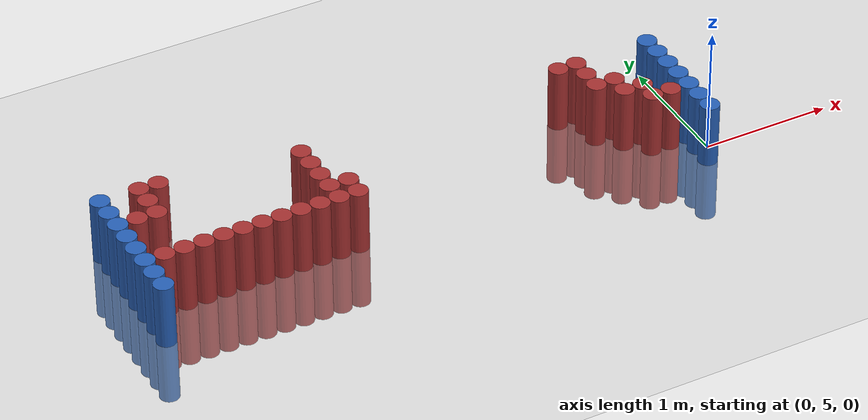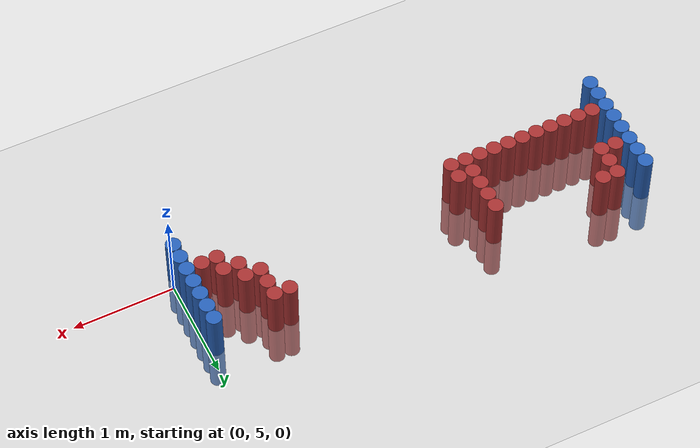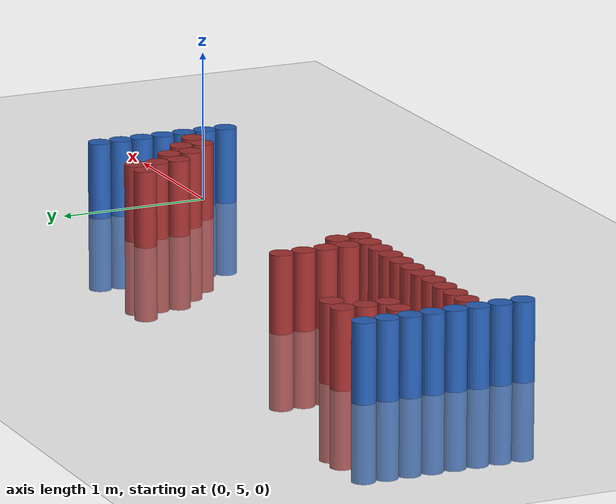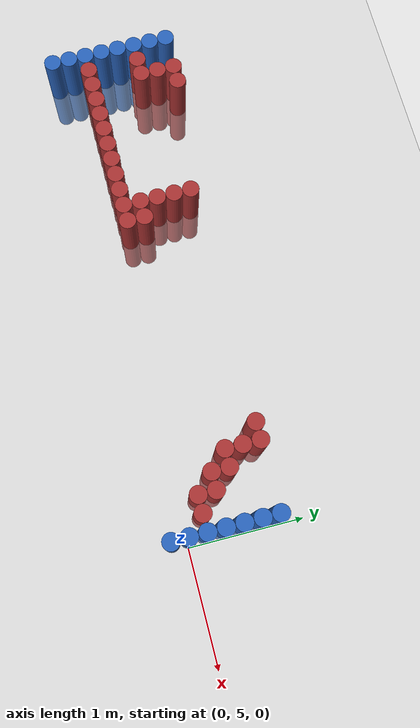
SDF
<sdf version="1.6">
 <world name="default">
  <model name="ground_plane">
   <static>1</static>
   <link name="link">
    <collision name="collision">
     <geometry><plane><normal>0 0 1</normal><size>100 100</size></plane></geometry>
     <surface><friction><ode><mu>100</mu><mu2>50</mu2></ode></friction></surface>
    </collision>
    <visual name="visual">
     <cast_shadows>0</cast_shadows>
     <geometry><plane><normal>0 0 1</normal><size>100 100</size></plane></geometry>
     <material>
      <script><uri>file://media/materials/scripts/gazebo.material</uri><name>Gazebo/Grey</name></script>
     </material>
    </visual>
   </link>
  </model>
  <model name="unit_cylinder_92">
   <static>1</static>
   <pose>-0.075000 4.875000 0.000000 0.000000 0.000000 0.000000</pose>
   <link name="link">
    <inertial>
     <mass>1</mass>
     <inertia><ixx>0.145833</ixx><ixy>0</ixy><ixz>0</ixz><iyy>0.145833</iyy><iyz>0</iyz><izz>0.125</izz></inertia>
    </inertial>
    <collision name="collision">
     <geometry><cylinder><radius>0.075000</radius><length>1</length></cylinder></geometry>
    </collision>
    <visual name="visual">
     <geometry><cylinder><radius>0.075000</radius><length>1</length></cylinder></geometry>
     <material>
      <ambient>0.152000 0.379000 0.720000 1</ambient>
      <diffuse>0.152000 0.379000 0.720000 1</diffuse>
     </material>
     <material>
      <script><name>Gazebo/Grey</name><uri>file://media/materials/scripts/gazebo.material</uri></script>
     </material>
    </visual>
   </link>
  </model>
  <model name="unit_cylinder_93">
   <static>1</static>
   <pose>-4.425000 4.875000 0.000000 0.000000 0.000000 0.000000</pose>
   <link name="link">
    <inertial>
     <mass>1</mass>
     <inertia><ixx>0.145833</ixx><ixy>0</ixy><ixz>0</ixz><iyy>0.145833</iyy><iyz>0</iyz><izz>0.125</izz></inertia>
    </inertial>
    <collision name="collision">
     <geometry><cylinder><radius>0.075000</radius><length>1</length></cylinder></geometry>
    </collision>
    <visual name="visual">
     <geometry><cylinder><radius>0.075000</radius><length>1</length></cylinder></geometry>
     <material>
      <ambient>0.152000 0.379000 0.720000 1</ambient>
      <diffuse>0.152000 0.379000 0.720000 1</diffuse>
     </material>
     <material>
      <script><name>Gazebo/Grey</name><uri>file://media/materials/scripts/gazebo.material</uri></script>
     </material>
    </visual>
   </link>
  </model>
  <model name="unit_cylinder_94">
   <static>1</static>
   <pose>-0.075000 5.025000 0.000000 0.000000 0.000000 0.000000</pose>
   <link name="link">
    <inertial>
     <mass>1</mass>
     <inertia><ixx>0.145833</ixx><ixy>0</ixy><ixz>0</ixz><iyy>0.145833</iyy><iyz>0</iyz><izz>0.125</izz></inertia>
    </inertial>
    <collision name="collision">
     <geometry><cylinder><radius>0.075000</radius><length>1</length></cylinder></geometry>
    </collision>
    <visual name="visual">
     <geometry><cylinder><radius>0.075000</radius><length>1</length></cylinder></geometry>
     <material>
      <ambient>0.152000 0.379000 0.720000 1</ambient>
      <diffuse>0.152000 0.379000 0.720000 1</diffuse>
     </material>
     <material>
      <script><name>Gazebo/Grey</name><uri>file://media/materials/scripts/gazebo.material</uri></script>
     </material>
    </visual>
   </link>
  </model>
  <model name="unit_cylinder_95">
   <static>1</static>
   <pose>-4.425000 5.025000 0.000000 0.000000 0.000000 0.000000</pose>
   <link name="link">
    <inertial>
     <mass>1</mass>
     <inertia><ixx>0.145833</ixx><ixy>0</ixy><ixz>0</ixz><iyy>0.145833</iyy><iyz>0</iyz><izz>0.125</izz></inertia>
    </inertial>
    <collision name="collision">
     <geometry><cylinder><radius>0.075000</radius><length>1</length></cylinder></geometry>
    </collision>
    <visual name="visual">
     <geometry><cylinder><radius>0.075000</radius><length>1</length></cylinder></geometry>
     <material>
      <ambient>0.152000 0.379000 0.720000 1</ambient>
      <diffuse>0.152000 0.379000 0.720000 1</diffuse>
     </material>
     <material>
      <script><name>Gazebo/Grey</name><uri>file://media/materials/scripts/gazebo.material</uri></script>
     </material>
    </visual>
   </link>
  </model>
  <model name="unit_cylinder_96">
   <static>1</static>
   <pose>-4.425000 5.175000 0.000000 0.000000 0.000000 0.000000</pose>
   <link name="link">
    <inertial>
     <mass>1</mass>
     <inertia><ixx>0.145833</ixx><ixy>0</ixy><ixz>0</ixz><iyy>0.145833</iyy><iyz>0</iyz><izz>0.125</izz></inertia>
    </inertial>
    <collision name="collision">
     <geometry><cylinder><radius>0.075000</radius><length>1</length></cylinder></geometry>
    </collision>
    <visual name="visual">
     <geometry><cylinder><radius>0.075000</radius><length>1</length></cylinder></geometry>
     <material>
      <ambient>0.152000 0.379000 0.720000 1</ambient>
      <diffuse>0.152000 0.379000 0.720000 1</diffuse>
     </material>
     <material>
      <script><name>Gazebo/Grey</name><uri>file://media/materials/scripts/gazebo.material</uri></script>
     </material>
    </visual>
   </link>
  </model>
  <model name="unit_cylinder_97">
   <static>1</static>
   <pose>-4.425000 5.325000 0.000000 0.000000 0.000000 0.000000</pose>
   <link name="link">
    <inertial>
     <mass>1</mass>
     <inertia><ixx>0.145833</ixx><ixy>0</ixy><ixz>0</ixz><iyy>0.145833</iyy><iyz>0</iyz><izz>0.125</izz></inertia>
    </inertial>
    <collision name="collision">
     <geometry><cylinder><radius>0.075000</radius><length>1</length></cylinder></geometry>
    </collision>
    <visual name="visual">
     <geometry><cylinder><radius>0.075000</radius><length>1</length></cylinder></geometry>
     <material>
      <ambient>0.152000 0.379000 0.720000 1</ambient>
      <diffuse>0.152000 0.379000 0.720000 1</diffuse>
     </material>
     <material>
      <script><name>Gazebo/Grey</name><uri>file://media/materials/scripts/gazebo.material</uri></script>
     </material>
    </visual>
   </link>
  </model>
  <model name="unit_cylinder_98">
   <static>1</static>
   <pose>-4.425000 5.475000 0.000000 0.000000 0.000000 0.000000</pose>
   <link name="link">
    <inertial>
     <mass>1</mass>
     <inertia><ixx>0.145833</ixx><ixy>0</ixy><ixz>0</ixz><iyy>0.145833</iyy><iyz>0</iyz><izz>0.125</izz></inertia>
    </inertial>
    <collision name="collision">
     <geometry><cylinder><radius>0.075000</radius><length>1</length></cylinder></geometry>
    </collision>
    <visual name="visual">
     <geometry><cylinder><radius>0.075000</radius><length>1</length></cylinder></geometry>
     <material>
      <ambient>0.152000 0.379000 0.720000 1</ambient>
      <diffuse>0.152000 0.379000 0.720000 1</diffuse>
     </material>
     <material>
      <script><name>Gazebo/Grey</name><uri>file://media/materials/scripts/gazebo.material</uri></script>
     </material>
    </visual>
   </link>
  </model>
  <model name="unit_cylinder_99">
   <static>1</static>
   <pose>-4.425000 5.625000 0.000000 0.000000 0.000000 0.000000</pose>
   <link name="link">
    <inertial>
     <mass>1</mass>
     <inertia><ixx>0.145833</ixx><ixy>0</ixy><ixz>0</ixz><iyy>0.145833</iyy><iyz>0</iyz><izz>0.125</izz></inertia>
    </inertial>
    <collision name="collision">
     <geometry><cylinder><radius>0.075000</radius><length>1</length></cylinder></geometry>
    </collision>
    <visual name="visual">
     <geometry><cylinder><radius>0.075000</radius><length>1</length></cylinder></geometry>
     <material>
      <ambient>0.152000 0.379000 0.720000 1</ambient>
      <diffuse>0.152000 0.379000 0.720000 1</diffuse>
     </material>
     <material>
      <script><name>Gazebo/Grey</name><uri>file://media/materials/scripts/gazebo.material</uri></script>
     </material>
    </visual>
   </link>
  </model>
  <model name="unit_cylinder_100">
   <static>1</static>
   <pose>-4.425000 5.775000 0.000000 0.000000 0.000000 0.000000</pose>
   <link name="link">
    <inertial>
     <mass>1</mass>
     <inertia><ixx>0.145833</ixx><ixy>0</ixy><ixz>0</ixz><iyy>0.145833</iyy><iyz>0</iyz><izz>0.125</izz></inertia>
    </inertial>
    <collision name="collision">
     <geometry><cylinder><radius>0.075000</radius><length>1</length></cylinder></geometry>
    </collision>
    <visual name="visual">
     <geometry><cylinder><radius>0.075000</radius><length>1</length></cylinder></geometry>
     <material>
      <ambient>0.152000 0.379000 0.720000 1</ambient>
      <diffuse>0.152000 0.379000 0.720000 1</diffuse>
     </material>
     <material>
      <script><name>Gazebo/Grey</name><uri>file://media/materials/scripts/gazebo.material</uri></script>
     </material>
    </visual>
   </link>
  </model>
  <model name="unit_cylinder_101">
   <static>1</static>
   <pose>-4.425000 5.925000 0.000000 0.000000 0.000000 0.000000</pose>
   <link name="link">
    <inertial>
     <mass>1</mass>
     <inertia><ixx>0.145833</ixx><ixy>0</ixy><ixz>0</ixz><iyy>0.145833</iyy><iyz>0</iyz><izz>0.125</izz></inertia>
    </inertial>
    <collision name="collision">
     <geometry><cylinder><radius>0.075000</radius><length>1</length></cylinder></geometry>
    </collision>
    <visual name="visual">
     <geometry><cylinder><radius>0.075000</radius><length>1</length></cylinder></geometry>
     <material>
      <ambient>0.152000 0.379000 0.720000 1</ambient>
      <diffuse>0.152000 0.379000 0.720000 1</diffuse>
     </material>
     <material>
      <script><name>Gazebo/Grey</name><uri>file://media/materials/scripts/gazebo.material</uri></script>
     </material>
    </visual>
   </link>
  </model>
  <model name="unit_cylinder_126">
   <static>1</static>
   <pose>-4.275000 5.175000 0.000000 0.000000 0.000000 0.000000</pose>
   <link name="link">
    <inertial>
     <mass>1</mass>
     <inertia><ixx>0.145833</ixx><ixy>0</ixy><ixz>0</ixz><iyy>0.145833</iyy><iyz>0</iyz><izz>0.125</izz></inertia>
    </inertial>
    <collision name="collision">
     <geometry><cylinder><radius>0.075000</radius><length>1</length></cylinder></geometry>
    </collision>
    <visual name="visual">
     <geometry><cylinder><radius>0.075000</radius><length>1</length></cylinder></geometry>
     <material>
      <ambient>0.648000 0.192000 0.192000 1</ambient>
      <diffuse>0.648000 0.192000 0.192000 1</diffuse>
     </material>
     <material>
      <script><name>Gazebo/Grey</name><uri>file://media/materials/scripts/gazebo.material</uri></script>
     </material>
    </visual>
   </link>
  </model>
  <model name="unit_cylinder_127">
   <static>1</static>
   <pose>-4.275000 5.625000 0.000000 0.000000 0.000000 0.000000</pose>
   <link name="link">
    <inertial>
     <mass>1</mass>
     <inertia><ixx>0.145833</ixx><ixy>0</ixy><ixz>0</ixz><iyy>0.145833</iyy><iyz>0</iyz><izz>0.125</izz></inertia>
    </inertial>
    <collision name="collision">
     <geometry><cylinder><radius>0.075000</radius><length>1</length></cylinder></geometry>
    </collision>
    <visual name="visual">
     <geometry><cylinder><radius>0.075000</radius><length>1</length></cylinder></geometry>
     <material>
      <ambient>0.648000 0.192000 0.192000 1</ambient>
      <diffuse>0.648000 0.192000 0.192000 1</diffuse>
     </material>
     <material>
      <script><name>Gazebo/Grey</name><uri>file://media/materials/scripts/gazebo.material</uri></script>
     </material>
    </visual>
   </link>
  </model>
  <model name="unit_cylinder_128">
   <static>1</static>
   <pose>-4.125000 5.175000 0.000000 0.000000 0.000000 0.000000</pose>
   <link name="link">
    <inertial>
     <mass>1</mass>
     <inertia><ixx>0.145833</ixx><ixy>0</ixy><ixz>0</ixz><iyy>0.145833</iyy><iyz>0</iyz><izz>0.125</izz></inertia>
    </inertial>
    <collision name="collision">
     <geometry><cylinder><radius>0.075000</radius><length>1</length></cylinder></geometry>
    </collision>
    <visual name="visual">
     <geometry><cylinder><radius>0.075000</radius><length>1</length></cylinder></geometry>
     <material>
      <ambient>0.648000 0.192000 0.192000 1</ambient>
      <diffuse>0.648000 0.192000 0.192000 1</diffuse>
     </material>
     <material>
      <script><name>Gazebo/Grey</name><uri>file://media/materials/scripts/gazebo.material</uri></script>
     </material>
    </visual>
   </link>
  </model>
  <model name="unit_cylinder_129">
   <static>1</static>
   <pose>-4.125000 5.625000 0.000000 0.000000 0.000000 0.000000</pose>
   <link name="link">
    <inertial>
     <mass>1</mass>
     <inertia><ixx>0.145833</ixx><ixy>0</ixy><ixz>0</ixz><iyy>0.145833</iyy><iyz>0</iyz><izz>0.125</izz></inertia>
    </inertial>
    <collision name="collision">
     <geometry><cylinder><radius>0.075000</radius><length>1</length></cylinder></geometry>
    </collision>
    <visual name="visual">
     <geometry><cylinder><radius>0.075000</radius><length>1</length></cylinder></geometry>
     <material>
      <ambient>0.648000 0.192000 0.192000 1</ambient>
      <diffuse>0.648000 0.192000 0.192000 1</diffuse>
     </material>
     <material>
      <script><name>Gazebo/Grey</name><uri>file://media/materials/scripts/gazebo.material</uri></script>
     </material>
    </visual>
   </link>
  </model>
  <model name="unit_cylinder_130">
   <static>1</static>
   <pose>-4.125000 5.775000 0.000000 0.000000 0.000000 0.000000</pose>
   <link name="link">
    <inertial>
     <mass>1</mass>
     <inertia><ixx>0.145833</ixx><ixy>0</ixy><ixz>0</ixz><iyy>0.145833</iyy><iyz>0</iyz><izz>0.125</izz></inertia>
    </inertial>
    <collision name="collision">
     <geometry><cylinder><radius>0.075000</radius><length>1</length></cylinder></geometry>
    </collision>
    <visual name="visual">
     <geometry><cylinder><radius>0.075000</radius><length>1</length></cylinder></geometry>
     <material>
      <ambient>0.648000 0.192000 0.192000 1</ambient>
      <diffuse>0.648000 0.192000 0.192000 1</diffuse>
     </material>
     <material>
      <script><name>Gazebo/Grey</name><uri>file://media/materials/scripts/gazebo.material</uri></script>
     </material>
    </visual>
   </link>
  </model>
  <model name="unit_cylinder_131">
   <static>1</static>
   <pose>-4.125000 5.925000 0.000000 0.000000 0.000000 0.000000</pose>
   <link name="link">
    <inertial>
     <mass>1</mass>
     <inertia><ixx>0.145833</ixx><ixy>0</ixy><ixz>0</ixz><iyy>0.145833</iyy><iyz>0</iyz><izz>0.125</izz></inertia>
    </inertial>
    <collision name="collision">
     <geometry><cylinder><radius>0.075000</radius><length>1</length></cylinder></geometry>
    </collision>
    <visual name="visual">
     <geometry><cylinder><radius>0.075000</radius><length>1</length></cylinder></geometry>
     <material>
      <ambient>0.648000 0.192000 0.192000 1</ambient>
      <diffuse>0.648000 0.192000 0.192000 1</diffuse>
     </material>
     <material>
      <script><name>Gazebo/Grey</name><uri>file://media/materials/scripts/gazebo.material</uri></script>
     </material>
    </visual>
   </link>
  </model>
  <model name="unit_cylinder_132">
   <static>1</static>
   <pose>-3.975000 5.175000 0.000000 0.000000 0.000000 0.000000</pose>
   <link name="link">
    <inertial>
     <mass>1</mass>
     <inertia><ixx>0.145833</ixx><ixy>0</ixy><ixz>0</ixz><iyy>0.145833</iyy><iyz>0</iyz><izz>0.125</izz></inertia>
    </inertial>
    <collision name="collision">
     <geometry><cylinder><radius>0.075000</radius><length>1</length></cylinder></geometry>
    </collision>
    <visual name="visual">
     <geometry><cylinder><radius>0.075000</radius><length>1</length></cylinder></geometry>
     <material>
      <ambient>0.648000 0.192000 0.192000 1</ambient>
      <diffuse>0.648000 0.192000 0.192000 1</diffuse>
     </material>
     <material>
      <script><name>Gazebo/Grey</name><uri>file://media/materials/scripts/gazebo.material</uri></script>
     </material>
    </visual>
   </link>
  </model>
  <model name="unit_cylinder_133">
   <static>1</static>
   <pose>-3.975000 5.925000 0.000000 0.000000 0.000000 0.000000</pose>
   <link name="link">
    <inertial>
     <mass>1</mass>
     <inertia><ixx>0.145833</ixx><ixy>0</ixy><ixz>0</ixz><iyy>0.145833</iyy><iyz>0</iyz><izz>0.125</izz></inertia>
    </inertial>
    <collision name="collision">
     <geometry><cylinder><radius>0.075000</radius><length>1</length></cylinder></geometry>
    </collision>
    <visual name="visual">
     <geometry><cylinder><radius>0.075000</radius><length>1</length></cylinder></geometry>
     <material>
      <ambient>0.648000 0.192000 0.192000 1</ambient>
      <diffuse>0.648000 0.192000 0.192000 1</diffuse>
     </material>
     <material>
      <script><name>Gazebo/Grey</name><uri>file://media/materials/scripts/gazebo.material</uri></script>
     </material>
    </visual>
   </link>
  </model>
  <model name="unit_cylinder_135">
   <static>1</static>
   <pose>-3.825000 5.175000 0.000000 0.000000 0.000000 0.000000</pose>
   <link name="link">
    <inertial>
     <mass>1</mass>
     <inertia><ixx>0.145833</ixx><ixy>0</ixy><ixz>0</ixz><iyy>0.145833</iyy><iyz>0</iyz><izz>0.125</izz></inertia>
    </inertial>
    <collision name="collision">
     <geometry><cylinder><radius>0.075000</radius><length>1</length></cylinder></geometry>
    </collision>
    <visual name="visual">
     <geometry><cylinder><radius>0.075000</radius><length>1</length></cylinder></geometry>
     <material>
      <ambient>0.648000 0.192000 0.192000 1</ambient>
      <diffuse>0.648000 0.192000 0.192000 1</diffuse>
     </material>
     <material>
      <script><name>Gazebo/Grey</name><uri>file://media/materials/scripts/gazebo.material</uri></script>
     </material>
    </visual>
   </link>
  </model>
  <model name="unit_cylinder_140">
   <static>1</static>
   <pose>-3.675000 5.175000 0.000000 0.000000 0.000000 0.000000</pose>
   <link name="link">
    <inertial>
     <mass>1</mass>
     <inertia><ixx>0.145833</ixx><ixy>0</ixy><ixz>0</ixz><iyy>0.145833</iyy><iyz>0</iyz><izz>0.125</izz></inertia>
    </inertial>
    <collision name="collision">
     <geometry><cylinder><radius>0.075000</radius><length>1</length></cylinder></geometry>
    </collision>
    <visual name="visual">
     <geometry><cylinder><radius>0.075000</radius><length>1</length></cylinder></geometry>
     <material>
      <ambient>0.648000 0.192000 0.192000 1</ambient>
      <diffuse>0.648000 0.192000 0.192000 1</diffuse>
     </material>
     <material>
      <script><name>Gazebo/Grey</name><uri>file://media/materials/scripts/gazebo.material</uri></script>
     </material>
    </visual>
   </link>
  </model>
  <model name="unit_cylinder_144">
   <static>1</static>
   <pose>-3.525000 5.175000 0.000000 0.000000 0.000000 0.000000</pose>
   <link name="link">
    <inertial>
     <mass>1</mass>
     <inertia><ixx>0.145833</ixx><ixy>0</ixy><ixz>0</ixz><iyy>0.145833</iyy><iyz>0</iyz><izz>0.125</izz></inertia>
    </inertial>
    <collision name="collision">
     <geometry><cylinder><radius>0.075000</radius><length>1</length></cylinder></geometry>
    </collision>
    <visual name="visual">
     <geometry><cylinder><radius>0.075000</radius><length>1</length></cylinder></geometry>
     <material>
      <ambient>0.648000 0.192000 0.192000 1</ambient>
      <diffuse>0.648000 0.192000 0.192000 1</diffuse>
     </material>
     <material>
      <script><name>Gazebo/Grey</name><uri>file://media/materials/scripts/gazebo.material</uri></script>
     </material>
    </visual>
   </link>
  </model>
  <model name="unit_cylinder_150">
   <static>1</static>
   <pose>-3.375000 5.175000 0.000000 0.000000 0.000000 0.000000</pose>
   <link name="link">
    <inertial>
     <mass>1</mass>
     <inertia><ixx>0.145833</ixx><ixy>0</ixy><ixz>0</ixz><iyy>0.145833</iyy><iyz>0</iyz><izz>0.125</izz></inertia>
    </inertial>
    <collision name="collision">
     <geometry><cylinder><radius>0.075000</radius><length>1</length></cylinder></geometry>
    </collision>
    <visual name="visual">
     <geometry><cylinder><radius>0.075000</radius><length>1</length></cylinder></geometry>
     <material>
      <ambient>0.648000 0.192000 0.192000 1</ambient>
      <diffuse>0.648000 0.192000 0.192000 1</diffuse>
     </material>
     <material>
      <script><name>Gazebo/Grey</name><uri>file://media/materials/scripts/gazebo.material</uri></script>
     </material>
    </visual>
   </link>
  </model>
  <model name="unit_cylinder_155">
   <static>1</static>
   <pose>-3.225000 5.175000 0.000000 0.000000 0.000000 0.000000</pose>
   <link name="link">
    <inertial>
     <mass>1</mass>
     <inertia><ixx>0.145833</ixx><ixy>0</ixy><ixz>0</ixz><iyy>0.145833</iyy><iyz>0</iyz><izz>0.125</izz></inertia>
    </inertial>
    <collision name="collision">
     <geometry><cylinder><radius>0.075000</radius><length>1</length></cylinder></geometry>
    </collision>
    <visual name="visual">
     <geometry><cylinder><radius>0.075000</radius><length>1</length></cylinder></geometry>
     <material>
      <ambient>0.648000 0.192000 0.192000 1</ambient>
      <diffuse>0.648000 0.192000 0.192000 1</diffuse>
     </material>
     <material>
      <script><name>Gazebo/Grey</name><uri>file://media/materials/scripts/gazebo.material</uri></script>
     </material>
    </visual>
   </link>
  </model>
  <model name="unit_cylinder_162">
   <static>1</static>
   <pose>-3.075000 5.175000 0.000000 0.000000 0.000000 0.000000</pose>
   <link name="link">
    <inertial>
     <mass>1</mass>
     <inertia><ixx>0.145833</ixx><ixy>0</ixy><ixz>0</ixz><iyy>0.145833</iyy><iyz>0</iyz><izz>0.125</izz></inertia>
    </inertial>
    <collision name="collision">
     <geometry><cylinder><radius>0.075000</radius><length>1</length></cylinder></geometry>
    </collision>
    <visual name="visual">
     <geometry><cylinder><radius>0.075000</radius><length>1</length></cylinder></geometry>
     <material>
      <ambient>0.648000 0.192000 0.192000 1</ambient>
      <diffuse>0.648000 0.192000 0.192000 1</diffuse>
     </material>
     <material>
      <script><name>Gazebo/Grey</name><uri>file://media/materials/scripts/gazebo.material</uri></script>
     </material>
    </visual>
   </link>
  </model>
  <model name="unit_cylinder_166">
   <static>1</static>
   <pose>-2.925000 5.175000 0.000000 0.000000 0.000000 0.000000</pose>
   <link name="link">
    <inertial>
     <mass>1</mass>
     <inertia><ixx>0.145833</ixx><ixy>0</ixy><ixz>0</ixz><iyy>0.145833</iyy><iyz>0</iyz><izz>0.125</izz></inertia>
    </inertial>
    <collision name="collision">
     <geometry><cylinder><radius>0.075000</radius><length>1</length></cylinder></geometry>
    </collision>
    <visual name="visual">
     <geometry><cylinder><radius>0.075000</radius><length>1</length></cylinder></geometry>
     <material>
      <ambient>0.648000 0.192000 0.192000 1</ambient>
      <diffuse>0.648000 0.192000 0.192000 1</diffuse>
     </material>
     <material>
      <script><name>Gazebo/Grey</name><uri>file://media/materials/scripts/gazebo.material</uri></script>
     </material>
    </visual>
   </link>
  </model>
  <model name="unit_cylinder_167">
   <static>1</static>
   <pose>-2.925000 5.325000 0.000000 0.000000 0.000000 0.000000</pose>
   <link name="link">
    <inertial>
     <mass>1</mass>
     <inertia><ixx>0.145833</ixx><ixy>0</ixy><ixz>0</ixz><iyy>0.145833</iyy><iyz>0</iyz><izz>0.125</izz></inertia>
    </inertial>
    <collision name="collision">
     <geometry><cylinder><radius>0.075000</radius><length>1</length></cylinder></geometry>
    </collision>
    <visual name="visual">
     <geometry><cylinder><radius>0.075000</radius><length>1</length></cylinder></geometry>
     <material>
      <ambient>0.648000 0.192000 0.192000 1</ambient>
      <diffuse>0.648000 0.192000 0.192000 1</diffuse>
     </material>
     <material>
      <script><name>Gazebo/Grey</name><uri>file://media/materials/scripts/gazebo.material</uri></script>
     </material>
    </visual>
   </link>
  </model>
  <model name="unit_cylinder_168">
   <static>1</static>
   <pose>-2.925000 5.475000 0.000000 0.000000 0.000000 0.000000</pose>
   <link name="link">
    <inertial>
     <mass>1</mass>
     <inertia><ixx>0.145833</ixx><ixy>0</ixy><ixz>0</ixz><iyy>0.145833</iyy><iyz>0</iyz><izz>0.125</izz></inertia>
    </inertial>
    <collision name="collision">
     <geometry><cylinder><radius>0.075000</radius><length>1</length></cylinder></geometry>
    </collision>
    <visual name="visual">
     <geometry><cylinder><radius>0.075000</radius><length>1</length></cylinder></geometry>
     <material>
      <ambient>0.648000 0.192000 0.192000 1</ambient>
      <diffuse>0.648000 0.192000 0.192000 1</diffuse>
     </material>
     <material>
      <script><name>Gazebo/Grey</name><uri>file://media/materials/scripts/gazebo.material</uri></script>
     </material>
    </visual>
   </link>
  </model>
  <model name="unit_cylinder_169">
   <static>1</static>
   <pose>-2.925000 5.625000 0.000000 0.000000 0.000000 0.000000</pose>
   <link name="link">
    <inertial>
     <mass>1</mass>
     <inertia><ixx>0.145833</ixx><ixy>0</ixy><ixz>0</ixz><iyy>0.145833</iyy><iyz>0</iyz><izz>0.125</izz></inertia>
    </inertial>
    <collision name="collision">
     <geometry><cylinder><radius>0.075000</radius><length>1</length></cylinder></geometry>
    </collision>
    <visual name="visual">
     <geometry><cylinder><radius>0.075000</radius><length>1</length></cylinder></geometry>
     <material>
      <ambient>0.648000 0.192000 0.192000 1</ambient>
      <diffuse>0.648000 0.192000 0.192000 1</diffuse>
     </material>
     <material>
      <script><name>Gazebo/Grey</name><uri>file://media/materials/scripts/gazebo.material</uri></script>
     </material>
    </visual>
   </link>
  </model>
  <model name="unit_cylinder_170">
   <static>1</static>
   <pose>-2.925000 5.775000 0.000000 0.000000 0.000000 0.000000</pose>
   <link name="link">
    <inertial>
     <mass>1</mass>
     <inertia><ixx>0.145833</ixx><ixy>0</ixy><ixz>0</ixz><iyy>0.145833</iyy><iyz>0</iyz><izz>0.125</izz></inertia>
    </inertial>
    <collision name="collision">
     <geometry><cylinder><radius>0.075000</radius><length>1</length></cylinder></geometry>
    </collision>
    <visual name="visual">
     <geometry><cylinder><radius>0.075000</radius><length>1</length></cylinder></geometry>
     <material>
      <ambient>0.648000 0.192000 0.192000 1</ambient>
      <diffuse>0.648000 0.192000 0.192000 1</diffuse>
     </material>
     <material>
      <script><name>Gazebo/Grey</name><uri>file://media/materials/scripts/gazebo.material</uri></script>
     </material>
    </visual>
   </link>
  </model>
  <model name="unit_cylinder_185">
   <static>1</static>
   <pose>-2.775000 5.175000 0.000000 0.000000 0.000000 0.000000</pose>
   <link name="link">
    <inertial>
     <mass>1</mass>
     <inertia><ixx>0.145833</ixx><ixy>0</ixy><ixz>0</ixz><iyy>0.145833</iyy><iyz>0</iyz><izz>0.125</izz></inertia>
    </inertial>
    <collision name="collision">
     <geometry><cylinder><radius>0.075000</radius><length>1</length></cylinder></geometry>
    </collision>
    <visual name="visual">
     <geometry><cylinder><radius>0.075000</radius><length>1</length></cylinder></geometry>
     <material>
      <ambient>0.648000 0.192000 0.192000 1</ambient>
      <diffuse>0.648000 0.192000 0.192000 1</diffuse>
     </material>
     <material>
      <script><name>Gazebo/Grey</name><uri>file://media/materials/scripts/gazebo.material</uri></script>
     </material>
    </visual>
   </link>
  </model>
  <model name="unit_cylinder_186">
   <static>1</static>
   <pose>-2.775000 5.325000 0.000000 0.000000 0.000000 0.000000</pose>
   <link name="link">
    <inertial>
     <mass>1</mass>
     <inertia><ixx>0.145833</ixx><ixy>0</ixy><ixz>0</ixz><iyy>0.145833</iyy><iyz>0</iyz><izz>0.125</izz></inertia>
    </inertial>
    <collision name="collision">
     <geometry><cylinder><radius>0.075000</radius><length>1</length></cylinder></geometry>
    </collision>
    <visual name="visual">
     <geometry><cylinder><radius>0.075000</radius><length>1</length></cylinder></geometry>
     <material>
      <ambient>0.648000 0.192000 0.192000 1</ambient>
      <diffuse>0.648000 0.192000 0.192000 1</diffuse>
     </material>
     <material>
      <script><name>Gazebo/Grey</name><uri>file://media/materials/scripts/gazebo.material</uri></script>
     </material>
    </visual>
   </link>
  </model>
  <model name="unit_cylinder_208">
   <static>1</static>
   <pose>-0.825000 5.775000 0.000000 0.000000 0.000000 0.000000</pose>
   <link name="link">
    <inertial>
     <mass>1</mass>
     <inertia><ixx>0.145833</ixx><ixy>0</ixy><ixz>0</ixz><iyy>0.145833</iyy><iyz>0</iyz><izz>0.125</izz></inertia>
    </inertial>
    <collision name="collision">
     <geometry><cylinder><radius>0.075000</radius><length>1</length></cylinder></geometry>
    </collision>
    <visual name="visual">
     <geometry><cylinder><radius>0.075000</radius><length>1</length></cylinder></geometry>
     <material>
      <ambient>0.648000 0.192000 0.192000 1</ambient>
      <diffuse>0.648000 0.192000 0.192000 1</diffuse>
     </material>
     <material>
      <script><name>Gazebo/Grey</name><uri>file://media/materials/scripts/gazebo.material</uri></script>
     </material>
    </visual>
   </link>
  </model>
  <model name="unit_cylinder_216">
   <static>1</static>
   <pose>-0.675000 5.475000 0.000000 0.000000 0.000000 0.000000</pose>
   <link name="link">
    <inertial>
     <mass>1</mass>
     <inertia><ixx>0.145833</ixx><ixy>0</ixy><ixz>0</ixz><iyy>0.145833</iyy><iyz>0</iyz><izz>0.125</izz></inertia>
    </inertial>
    <collision name="collision">
     <geometry><cylinder><radius>0.075000</radius><length>1</length></cylinder></geometry>
    </collision>
    <visual name="visual">
     <geometry><cylinder><radius>0.075000</radius><length>1</length></cylinder></geometry>
     <material>
      <ambient>0.648000 0.192000 0.192000 1</ambient>
      <diffuse>0.648000 0.192000 0.192000 1</diffuse>
     </material>
     <material>
      <script><name>Gazebo/Grey</name><uri>file://media/materials/scripts/gazebo.material</uri></script>
     </material>
    </visual>
   </link>
  </model>
  <model name="unit_cylinder_217">
   <static>1</static>
   <pose>-0.675000 5.625000 0.000000 0.000000 0.000000 0.000000</pose>
   <link name="link">
    <inertial>
     <mass>1</mass>
     <inertia><ixx>0.145833</ixx><ixy>0</ixy><ixz>0</ixz><iyy>0.145833</iyy><iyz>0</iyz><izz>0.125</izz></inertia>
    </inertial>
    <collision name="collision">
     <geometry><cylinder><radius>0.075000</radius><length>1</length></cylinder></geometry>
    </collision>
    <visual name="visual">
     <geometry><cylinder><radius>0.075000</radius><length>1</length></cylinder></geometry>
     <material>
      <ambient>0.648000 0.192000 0.192000 1</ambient>
      <diffuse>0.648000 0.192000 0.192000 1</diffuse>
     </material>
     <material>
      <script><name>Gazebo/Grey</name><uri>file://media/materials/scripts/gazebo.material</uri></script>
     </material>
    </visual>
   </link>
  </model>
  <model name="unit_cylinder_218">
   <static>1</static>
   <pose>-0.675000 5.775000 0.000000 0.000000 0.000000 0.000000</pose>
   <link name="link">
    <inertial>
     <mass>1</mass>
     <inertia><ixx>0.145833</ixx><ixy>0</ixy><ixz>0</ixz><iyy>0.145833</iyy><iyz>0</iyz><izz>0.125</izz></inertia>
    </inertial>
    <collision name="collision">
     <geometry><cylinder><radius>0.075000</radius><length>1</length></cylinder></geometry>
    </collision>
    <visual name="visual">
     <geometry><cylinder><radius>0.075000</radius><length>1</length></cylinder></geometry>
     <material>
      <ambient>0.648000 0.192000 0.192000 1</ambient>
      <diffuse>0.648000 0.192000 0.192000 1</diffuse>
     </material>
     <material>
      <script><name>Gazebo/Grey</name><uri>file://media/materials/scripts/gazebo.material</uri></script>
     </material>
    </visual>
   </link>
  </model>
  <model name="unit_cylinder_222">
   <static>1</static>
   <pose>-0.525000 5.325000 0.000000 0.000000 0.000000 0.000000</pose>
   <link name="link">
    <inertial>
     <mass>1</mass>
     <inertia><ixx>0.145833</ixx><ixy>0</ixy><ixz>0</ixz><iyy>0.145833</iyy><iyz>0</iyz><izz>0.125</izz></inertia>
    </inertial>
    <collision name="collision">
     <geometry><cylinder><radius>0.075000</radius><length>1</length></cylinder></geometry>
    </collision>
    <visual name="visual">
     <geometry><cylinder><radius>0.075000</radius><length>1</length></cylinder></geometry>
     <material>
      <ambient>0.648000 0.192000 0.192000 1</ambient>
      <diffuse>0.648000 0.192000 0.192000 1</diffuse>
     </material>
     <material>
      <script><name>Gazebo/Grey</name><uri>file://media/materials/scripts/gazebo.material</uri></script>
     </material>
    </visual>
   </link>
  </model>
  <model name="unit_cylinder_223">
   <static>1</static>
   <pose>-0.525000 5.475000 0.000000 0.000000 0.000000 0.000000</pose>
   <link name="link">
    <inertial>
     <mass>1</mass>
     <inertia><ixx>0.145833</ixx><ixy>0</ixy><ixz>0</ixz><iyy>0.145833</iyy><iyz>0</iyz><izz>0.125</izz></inertia>
    </inertial>
    <collision name="collision">
     <geometry><cylinder><radius>0.075000</radius><length>1</length></cylinder></geometry>
    </collision>
    <visual name="visual">
     <geometry><cylinder><radius>0.075000</radius><length>1</length></cylinder></geometry>
     <material>
      <ambient>0.648000 0.192000 0.192000 1</ambient>
      <diffuse>0.648000 0.192000 0.192000 1</diffuse>
     </material>
     <material>
      <script><name>Gazebo/Grey</name><uri>file://media/materials/scripts/gazebo.material</uri></script>
     </material>
    </visual>
   </link>
  </model>
  <model name="unit_cylinder_231">
   <static>1</static>
   <pose>-0.375000 5.175000 0.000000 0.000000 0.000000 0.000000</pose>
   <link name="link">
    <inertial>
     <mass>1</mass>
     <inertia><ixx>0.145833</ixx><ixy>0</ixy><ixz>0</ixz><iyy>0.145833</iyy><iyz>0</iyz><izz>0.125</izz></inertia>
    </inertial>
    <collision name="collision">
     <geometry><cylinder><radius>0.075000</radius><length>1</length></cylinder></geometry>
    </collision>
    <visual name="visual">
     <geometry><cylinder><radius>0.075000</radius><length>1</length></cylinder></geometry>
     <material>
      <ambient>0.648000 0.192000 0.192000 1</ambient>
      <diffuse>0.648000 0.192000 0.192000 1</diffuse>
     </material>
     <material>
      <script><name>Gazebo/Grey</name><uri>file://media/materials/scripts/gazebo.material</uri></script>
     </material>
    </visual>
   </link>
  </model>
  <model name="unit_cylinder_232">
   <static>1</static>
   <pose>-0.375000 5.325000 0.000000 0.000000 0.000000 0.000000</pose>
   <link name="link">
    <inertial>
     <mass>1</mass>
     <inertia><ixx>0.145833</ixx><ixy>0</ixy><ixz>0</ixz><iyy>0.145833</iyy><iyz>0</iyz><izz>0.125</izz></inertia>
    </inertial>
    <collision name="collision">
     <geometry><cylinder><radius>0.075000</radius><length>1</length></cylinder></geometry>
    </collision>
    <visual name="visual">
     <geometry><cylinder><radius>0.075000</radius><length>1</length></cylinder></geometry>
     <material>
      <ambient>0.648000 0.192000 0.192000 1</ambient>
      <diffuse>0.648000 0.192000 0.192000 1</diffuse>
     </material>
     <material>
      <script><name>Gazebo/Grey</name><uri>file://media/materials/scripts/gazebo.material</uri></script>
     </material>
    </visual>
   </link>
  </model>
  <model name="unit_cylinder_239">
   <static>1</static>
   <pose>-0.225000 5.175000 0.000000 0.000000 0.000000 0.000000</pose>
   <link name="link">
    <inertial>
     <mass>1</mass>
     <inertia><ixx>0.145833</ixx><ixy>0</ixy><ixz>0</ixz><iyy>0.145833</iyy><iyz>0</iyz><izz>0.125</izz></inertia>
    </inertial>
    <collision name="collision">
     <geometry><cylinder><radius>0.075000</radius><length>1</length></cylinder></geometry>
    </collision>
    <visual name="visual">
     <geometry><cylinder><radius>0.075000</radius><length>1</length></cylinder></geometry>
     <material>
      <ambient>0.648000 0.192000 0.192000 1</ambient>
      <diffuse>0.648000 0.192000 0.192000 1</diffuse>
     </material>
     <material>
      <script><name>Gazebo/Grey</name><uri>file://media/materials/scripts/gazebo.material</uri></script>
     </material>
    </visual>
   </link>
  </model>
  <model name="unit_cylinder_244">
   <static>1</static>
   <pose>-0.075000 5.175000 0.000000 0.000000 0.000000 0.000000</pose>
   <link name="link">
    <inertial>
     <mass>1</mass>
     <inertia><ixx>0.145833</ixx><ixy>0</ixy><ixz>0</ixz><iyy>0.145833</iyy><iyz>0</iyz><izz>0.125</izz></inertia>
    </inertial>
    <collision name="collision">
     <geometry><cylinder><radius>0.075000</radius><length>1</length></cylinder></geometry>
    </collision>
    <visual name="visual">
     <geometry><cylinder><radius>0.075000</radius><length>1</length></cylinder></geometry>
     <material>
      <ambient>0.152000 0.379000 0.720000 1</ambient>
      <diffuse>0.152000 0.379000 0.720000 1</diffuse>
     </material>
     <material>
      <script><name>Gazebo/Grey</name><uri>file://media/materials/scripts/gazebo.material</uri></script>
     </material>
    </visual>
   </link>
  </model>
  <model name="unit_cylinder_245">
   <static>1</static>
   <pose>-0.075000 5.325000 0.000000 0.000000 0.000000 0.000000</pose>
   <link name="link">
    <inertial>
     <mass>1</mass>
     <inertia><ixx>0.145833</ixx><ixy>0</ixy><ixz>0</ixz><iyy>0.145833</iyy><iyz>0</iyz><izz>0.125</izz></inertia>
    </inertial>
    <collision name="collision">
     <geometry><cylinder><radius>0.075000</radius><length>1</length></cylinder></geometry>
    </collision>
    <visual name="visual">
     <geometry><cylinder><radius>0.075000</radius><length>1</length></cylinder></geometry>
     <material>
      <ambient>0.152000 0.379000 0.720000 1</ambient>
      <diffuse>0.152000 0.379000 0.720000 1</diffuse>
     </material>
     <material>
      <script><name>Gazebo/Grey</name><uri>file://media/materials/scripts/gazebo.material</uri></script>
     </material>
    </visual>
   </link>
  </model>
  <model name="unit_cylinder_246">
   <static>1</static>
   <pose>-0.075000 5.475000 0.000000 0.000000 0.000000 0.000000</pose>
   <link name="link">
    <inertial>
     <mass>1</mass>
     <inertia><ixx>0.145833</ixx><ixy>0</ixy><ixz>0</ixz><iyy>0.145833</iyy><iyz>0</iyz><izz>0.125</izz></inertia>
    </inertial>
    <collision name="collision">
     <geometry><cylinder><radius>0.075000</radius><length>1</length></cylinder></geometry>
    </collision>
    <visual name="visual">
     <geometry><cylinder><radius>0.075000</radius><length>1</length></cylinder></geometry>
     <material>
      <ambient>0.152000 0.379000 0.720000 1</ambient>
      <diffuse>0.152000 0.379000 0.720000 1</diffuse>
     </material>
     <material>
      <script><name>Gazebo/Grey</name><uri>file://media/materials/scripts/gazebo.material</uri></script>
     </material>
    </visual>
   </link>
  </model>
  <model name="unit_cylinder_247">
   <static>1</static>
   <pose>-0.075000 5.625000 0.000000 0.000000 0.000000 0.000000</pose>
   <link name="link">
    <inertial>
     <mass>1</mass>
     <inertia><ixx>0.145833</ixx><ixy>0</ixy><ixz>0</ixz><iyy>0.145833</iyy><iyz>0</iyz><izz>0.125</izz></inertia>
    </inertial>
    <collision name="collision">
     <geometry><cylinder><radius>0.075000</radius><length>1</length></cylinder></geometry>
    </collision>
    <visual name="visual">
     <geometry><cylinder><radius>0.075000</radius><length>1</length></cylinder></geometry>
     <material>
      <ambient>0.152000 0.379000 0.720000 1</ambient>
      <diffuse>0.152000 0.379000 0.720000 1</diffuse>
     </material>
     <material>
      <script><name>Gazebo/Grey</name><uri>file://media/materials/scripts/gazebo.material</uri></script>
     </material>
    </visual>
   </link>
  </model>
  <model name="unit_cylinder_248">
   <static>1</static>
   <pose>-0.075000 5.775000 0.000000 0.000000 0.000000 0.000000</pose>
   <link name="link">
    <inertial>
     <mass>1</mass>
     <inertia><ixx>0.145833</ixx><ixy>0</ixy><ixz>0</ixz><iyy>0.145833</iyy><iyz>0</iyz><izz>0.125</izz></inertia>
    </inertial>
    <collision name="collision">
     <geometry><cylinder><radius>0.075000</radius><length>1</length></cylinder></geometry>
    </collision>
    <visual name="visual">
     <geometry><cylinder><radius>0.075000</radius><length>1</length></cylinder></geometry>
     <material>
      <ambient>0.152000 0.379000 0.720000 1</ambient>
      <diffuse>0.152000 0.379000 0.720000 1</diffuse>
     </material>
     <material>
      <script><name>Gazebo/Grey</name><uri>file://media/materials/scripts/gazebo.material</uri></script>
     </material>
    </visual>
   </link>
  </model>
 </world>
</sdf>
